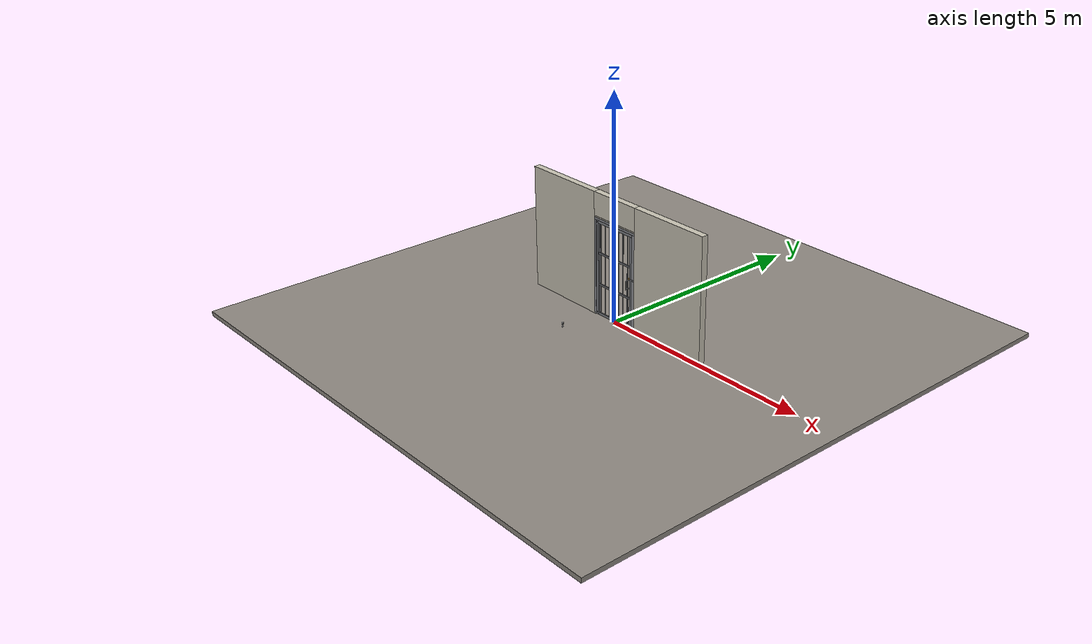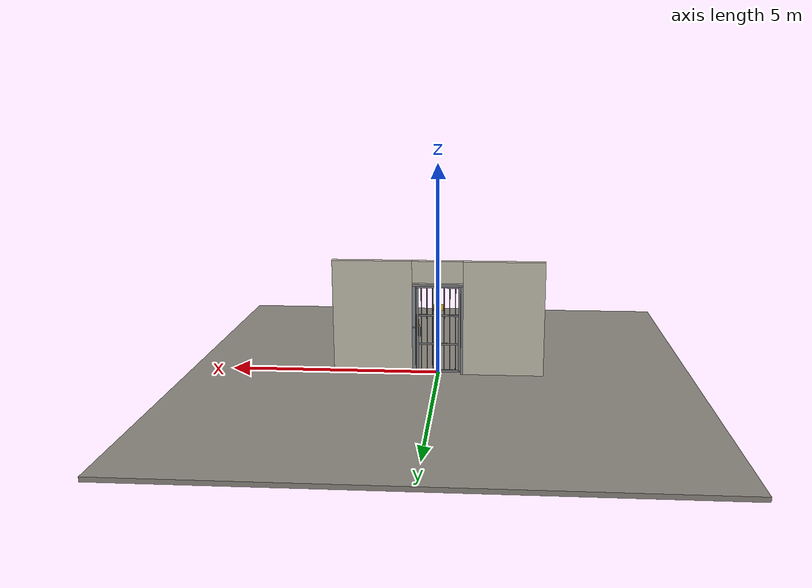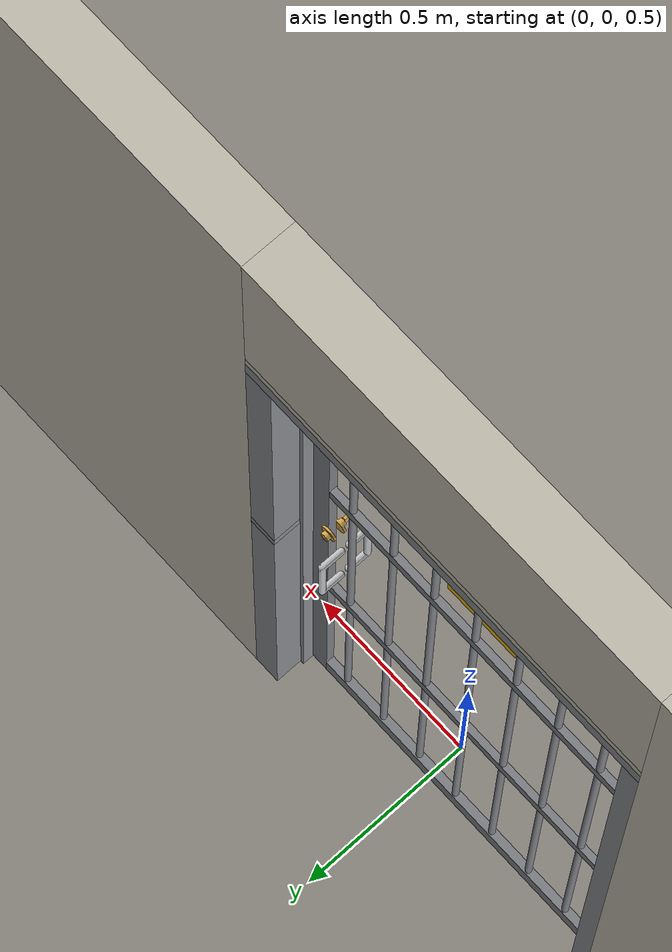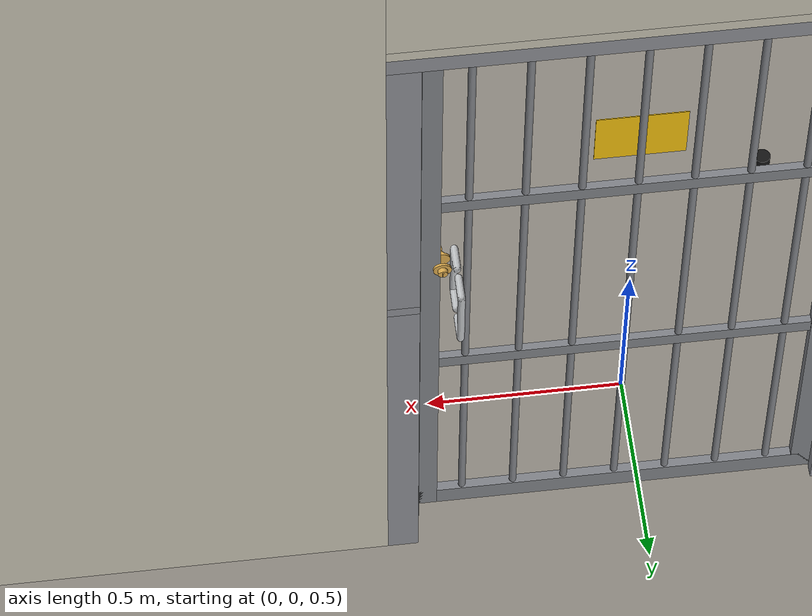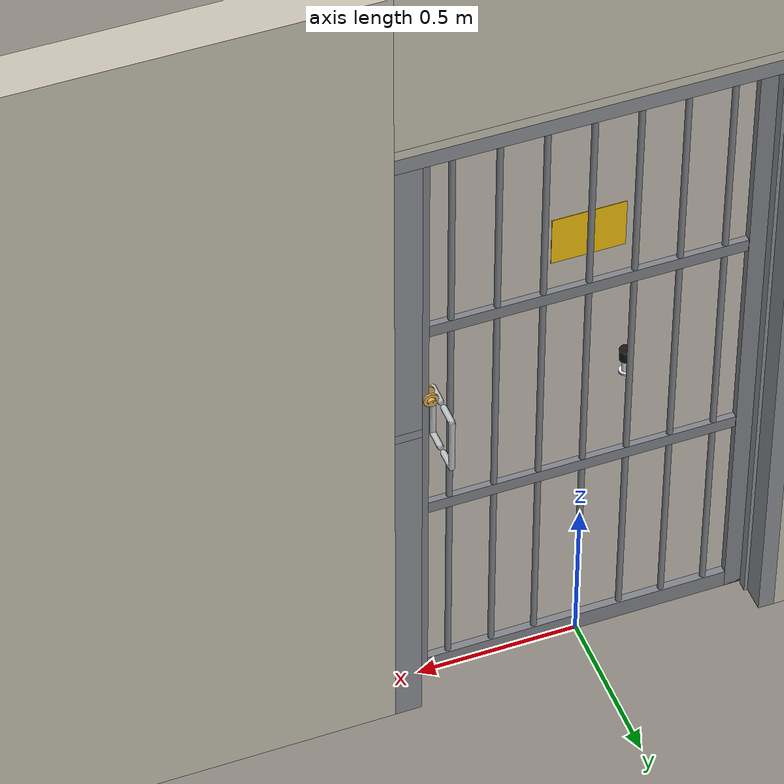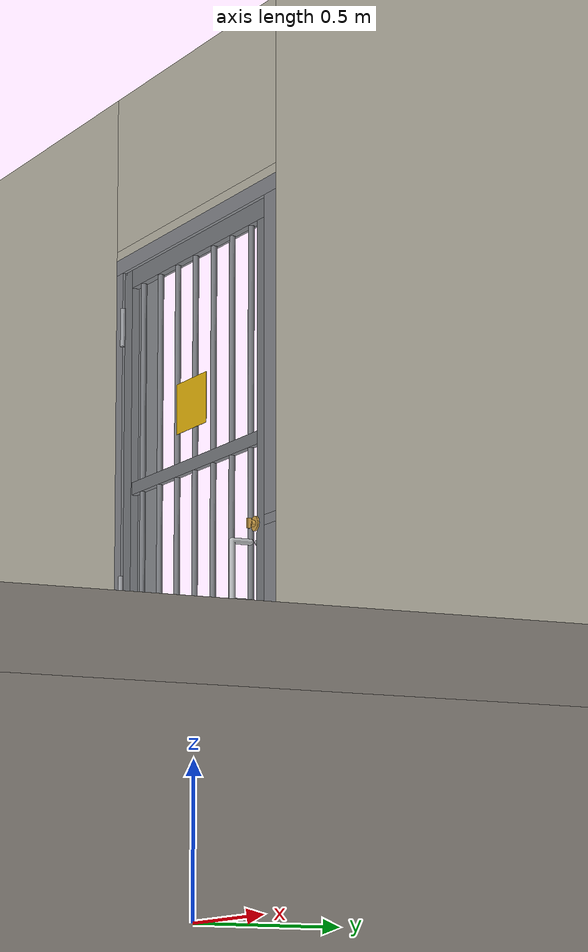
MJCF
<?xml version="1.0" ?>
<mujoco model="db0035_swing_single_full">
  <compiler angle="radian" meshdir="../../hardware" texturedir="../../textures" autolimits="true" inertiafromgeom="false"/>
  <option timestep="0.002" integrator="implicitfast" cone="elliptic" impratio="10" noslip_iterations="3">
    <flag multiccd="enable"/>
  </option>
  <size memory="16M"/>
  <default>
    <geom condim="4" solref="0.005 1" solimp="0.95 0.99 0.001"/>
    <joint solreflimit="0.005 1" solimplimit="0.95 0.99 0.001"/>
    <tendon solreflimit="0.005 1"/>
    <equality solref="0.002 1"/>
  </default>
  <visual>
    <headlight ambient="0.4 0.4 0.4" diffuse="0.7 0.7 0.7" specular="0.2 0.2 0.2"/>
    <quality shadowsize="4096"/>
    <map znear="0.01" zfar="60"/>
  </visual>
  <asset>
    <mesh name="cyl_face_e9e5036966" file="cyl_face_e9e5036966.obj"/>
    <mesh name="hinge_a862eb1c73" file="hinge_a862eb1c73.obj"/>
    <mesh name="hinge_jamb_6edc213065" file="hinge_jamb_6edc213065.obj"/>
    <mesh name="pull_1e5d69a91a" file="pull_1e5d69a91a.obj"/>
    <mesh name="thumbturn_eb5c9899a3" file="thumbturn_eb5c9899a3.obj"/>
    <material name="mat_floor" rgba="0.55 0.53 0.5 1" specular="0.2" shininess="0.15" reflectance="0"/>
    <material name="mat_wall" rgba="0.78 0.76 0.7 1" specular="0.2" shininess="0.1" reflectance="0"/>
    <material name="mat_leaf" rgba="0.5 0.51 0.53 1" specular="0.23" shininess="0.32" reflectance="0.02"/>
    <material name="mat_hinge" rgba="0.65 0.66 0.68 1" specular="0.74" shininess="0.5" reflectance="0.36"/>
    <material name="mat_op_stainless" rgba="0.75 0.76 0.77 1" specular="0.8" shininess="0.65" reflectance="0.4"/>
    <material name="mat_deadbolt" rgba="0.85 0.66 0.3 1" specular="0.8" shininess="0.75" reflectance="0.4"/>
    <material name="mat_frame" rgba="0.55 0.56 0.58 1" specular="0.8" shininess="0.55" reflectance="0.4"/>
    <material name="mat_placard" rgba="0.95 0.75 0.05 1" specular="0.2" shininess="0.5" reflectance="0"/>
    <material name="mat_bumper_stop" rgba="0.08 0.08 0.08 1" specular="0.2" shininess="0.1" reflectance="0"/>
    <material name="mat_stop_base" rgba="0.9 0.9 0.92 1" specular="0.8" shininess="0.9" reflectance="0.4"/>
    <texture name="skybox" type="skybox" builtin="gradient" rgb1="0.6 0.7 0.85" rgb2="0.9 0.92 0.95" width="256" height="256"/>
  </asset>
  <worldbody>
    <light name="sun" pos="1.5 -2.5 4" dir="-0.3 0.5 -0.8" directional="true" diffuse="0.8 0.8 0.8" specular="0.3 0.3 0.3" castshadow="true"/>
    <light name="fill" pos="-1.5 2.5 3" dir="0.3 -0.5 -0.7" directional="true" diffuse="0.35 0.35 0.4" castshadow="false"/>
    <camera name="robot_view" pos="0 -2.584812 1.812087" xyaxes="1 0 0 0 0.26963 0.962964" fovy="52"/>
    <camera name="far_view" pos="0 2.690812 1.812087" xyaxes="-1 0 0 0 -0.26963 0.962964" fovy="52"/>
    <camera name="iso" pos="2.004737 -2.162762 2.234138" xyaxes="0.741536 0.670913 0 -0.242917 0.268487 0.932151" fovy="46"/>
    <camera name="detail_handle" pos="0.6085 -0.8725 1.296" xyaxes="0.97561 0.219512 0 -0.070934 0.315262 0.94635" fovy="38"/>
    <geom name="floor" type="box" size="6 6 0.05" pos="0 0 -0.05" material="mat_floor" group="0" contype="1" conaffinity="1" friction="0.8 0.005 0.0001" density="2400"/>
    <geom name="wall_left" type="box" size="0.95675 0.0725 1.3735" pos="-1.54325 0.053 1.3735" material="mat_wall" group="0" contype="1" conaffinity="1" friction="0.6 0.005 0.0001" density="800"/>
    <geom name="wall_right" type="box" size="0.94175 0.0725 1.3735" pos="1.55825 0.053 1.3735" material="mat_wall" group="0" contype="1" conaffinity="1" friction="0.6 0.005 0.0001" density="800"/>
    <geom name="wall_header" type="box" size="0.6015 0.0725 0.26" pos="0.015 0.053 2.487" material="mat_wall" group="0" contype="1" conaffinity="1" friction="0.6 0.005 0.0001" density="800"/>
    <geom name="hinge_0_jamb" type="mesh" mesh="hinge_jamb_6edc213065" pos="-0.5335 -0.0195 0.259" material="mat_hinge" group="1" contype="0" conaffinity="0" density="7850"/>
    <geom name="hinge_1_jamb" type="mesh" mesh="hinge_jamb_6edc213065" pos="-0.5335 -0.0195 1.076" material="mat_hinge" group="1" contype="0" conaffinity="0" density="7850"/>
    <geom name="hinge_2_jamb" type="mesh" mesh="hinge_jamb_6edc213065" pos="-0.5335 -0.0195 1.963" material="mat_hinge" group="1" contype="0" conaffinity="0" density="7850"/>
    <geom name="leaf_deadbolt_strike_b" type="box" size="0.0155 0.003 0.0005" pos="0.536 0 1.1375" quat="-0.5 -0.5 0.5 0.5" material="mat_deadbolt" group="1" contype="0" conaffinity="0" density="7800"/>
    <geom name="leaf_deadbolt_strike_l" type="box" size="0.003 0.0155 0.0005" pos="0.536 0.0125 1.156" quat="-0.5 -0.5 0.5 0.5" material="mat_deadbolt" group="1" contype="0" conaffinity="0" density="7800"/>
    <geom name="leaf_deadbolt_strike_t" type="box" size="0.0155 0.003 0.0005" pos="0.536 0 1.1745" quat="-0.5 -0.5 0.5 0.5" material="mat_deadbolt" group="1" contype="0" conaffinity="0" density="7800"/>
    <geom name="leaf_deadbolt_strike_r" type="box" size="0.003 0.0155 0.0005" pos="0.536 -0.0125 1.156" quat="-0.5 -0.5 0.5 0.5" material="mat_deadbolt" group="1" contype="0" conaffinity="0" density="7800"/>
    <geom name="jamb_hinge" type="box" size="0.025 0.0725 1.0735" pos="-0.5615 0.053 1.0735" material="mat_frame" group="0" contype="1" conaffinity="1" friction="0.6 0.005 0.0001" density="300"/>
    <geom name="strike_1156_wall_n" type="box" size="0.04 0.058 0.0155" pos="0.5765 0.0675 1.156" material="mat_frame" group="0" contype="1" conaffinity="1" friction="0.6 0.005 0.0001" density="300"/>
    <geom name="strike_1156_wall_p" type="box" size="0.04 0.005 0.0155" pos="0.5765 -0.0145 1.156" material="mat_frame" group="0" contype="1" conaffinity="1" friction="0.6 0.005 0.0001" density="300"/>
    <geom name="strike_1156_back" type="box" size="0.0253 0.0095 0.0155" pos="0.5912 0 1.156" material="mat_frame" group="0" contype="1" conaffinity="1" friction="0.6 0.005 0.0001" density="300"/>
    <geom name="jamb_strike_0" type="box" size="0.04 0.0725 0.57025" pos="0.5765 0.053 0.57025" material="mat_frame" group="0" contype="1" conaffinity="1" friction="0.6 0.005 0.0001" density="300"/>
    <geom name="jamb_strike_1" type="box" size="0.04 0.0725 0.48775" pos="0.5765 0.053 1.65925" material="mat_frame" group="0" contype="1" conaffinity="1" friction="0.6 0.005 0.0001" density="300"/>
    <geom name="jamb_head" type="box" size="0.6015 0.0725 0.025" pos="0.015 0.053 2.172" material="mat_frame" group="0" contype="1" conaffinity="1" friction="0.6 0.005 0.0001" density="300"/>
    <geom name="head_stud" type="box" size="0.6015 0.0725 0.015" pos="0.015 0.053 2.212" material="mat_wall" group="0" contype="1" conaffinity="1" friction="0.6 0.005 0.0001" density="500"/>
    <geom name="stop_hinge" type="box" size="0.0055 0.016 1.0735" pos="-0.531 0.029 1.0735" material="mat_frame" group="0" contype="1" conaffinity="1" friction="0.6 0.005 0.0001" density="300"/>
    <geom name="stop_strike" type="box" size="0.0055 0.016 1.0735" pos="0.531 0.029 1.0735" material="mat_frame" group="0" contype="1" conaffinity="1" friction="0.6 0.005 0.0001" density="300"/>
    <geom name="stop_head" type="box" size="0.5365 0.016 0.0055" pos="0 0.029 2.1415" material="mat_frame" group="0" contype="1" conaffinity="1" friction="0.6 0.005 0.0001" density="300"/>
    <geom name="door_stop_base" type="cylinder" size="0.022 0.003" pos="-0.5495 -0.92645 0.003" material="mat_stop_base" group="0" contype="1" conaffinity="1" friction="0.6 0.005 0.0001" density="7850"/>
    <geom name="door_stop_post" type="cylinder" size="0.012 0.0245" pos="-0.5495 -0.92645 0.0305" material="mat_stop_base" group="0" contype="1" conaffinity="1" friction="0.6 0.005 0.0001" density="7850"/>
    <geom name="door_stop_bumper" type="cylinder" size="0.022 0.02" pos="-0.5495 -0.92645 0.075" material="mat_bumper_stop" group="0" contype="1" conaffinity="1" friction="0.6 0.005 0.0001" density="1100"/>
    <site name="approach_point" pos="0 -1.5 0" quat="1 0 0 0" size="0.05" rgba="0.2 0.9 0.2 0.5" group="4"/>
    <site name="goal_point" pos="0 1.5 0" quat="1 0 0 0" size="0.05" rgba="0.2 0.9 0.2 0.5" group="4"/>
    <site name="door_plane_center" pos="0 0 1.0735" quat="1 0 0 0" size="0.02" rgba="0.2 0.9 0.2 0.5" group="4"/>
    <body name="leaf" pos="-0.5365 0 0">
      <inertial pos="0.536652 -0.000114 1.076114" mass="100.362765" quat="-0.499944 0.499546 0.500445 0.500064" diaginertia="9.771622237 37.79859245 47.551554134"/>
      <joint name="leaf_hinge" type="hinge" axis="0 0 -1" pos="0.003 -0.0195 0" limited="true" range="0 1.570796" damping="0.54954" frictionloss="0.493314" armature="0.02"/>
      <geom name="leaf_slab_col" type="box" size="0.5335 0.0125 1.067" pos="0.5365 0 1.076" material="mat_leaf" group="3" contype="1" conaffinity="1" rgba="0.8 0.3 0.3 0.25" friction="0.45 0.005 0.0001" density="1"/>
      <geom name="leaf_rail_b" type="box" size="0.5335 0.0125 0.03" pos="0.5365 0 0.039" material="mat_leaf" group="1" contype="0" conaffinity="0" density="1"/>
      <geom name="leaf_rail_t" type="box" size="0.5335 0.0125 0.03" pos="0.5365 0 2.113" material="mat_leaf" group="1" contype="0" conaffinity="0" density="1"/>
      <geom name="leaf_stile_h" type="box" size="0.03 0.0125 1.067" pos="0.033 0 1.076" material="mat_leaf" group="1" contype="0" conaffinity="0" density="1"/>
      <geom name="leaf_stile_l" type="box" size="0.03 0.0125 1.067" pos="1.04 0 1.076" material="mat_leaf" group="1" contype="0" conaffinity="0" density="1"/>
      <geom name="leaf_bar_0" type="cylinder" size="0.0095 1.007" pos="0.130643 0 1.076" material="mat_leaf" group="1" contype="0" conaffinity="0" density="1"/>
      <geom name="leaf_bar_1" type="cylinder" size="0.0095 1.007" pos="0.265929 0 1.076" material="mat_leaf" group="1" contype="0" conaffinity="0" density="1"/>
      <geom name="leaf_bar_2" type="cylinder" size="0.0095 1.007" pos="0.401214 0 1.076" material="mat_leaf" group="1" contype="0" conaffinity="0" density="1"/>
      <geom name="leaf_bar_3" type="cylinder" size="0.0095 1.007" pos="0.5365 0 1.076" material="mat_leaf" group="1" contype="0" conaffinity="0" density="1"/>
      <geom name="leaf_bar_4" type="cylinder" size="0.0095 1.007" pos="0.671786 0 1.076" material="mat_leaf" group="1" contype="0" conaffinity="0" density="1"/>
      <geom name="leaf_bar_5" type="cylinder" size="0.0095 1.007" pos="0.807071 0 1.076" material="mat_leaf" group="1" contype="0" conaffinity="0" density="1"/>
      <geom name="leaf_bar_6" type="cylinder" size="0.0095 1.007" pos="0.942357 0 1.076" material="mat_leaf" group="1" contype="0" conaffinity="0" density="1"/>
      <geom name="leaf_crossbar_33" type="box" size="0.4735 0.01 0.02" pos="0.5365 0 0.71322" material="mat_leaf" group="1" contype="0" conaffinity="0" density="1"/>
      <geom name="leaf_crossbar_66" type="box" size="0.4735 0.01 0.02" pos="0.5365 0 1.41744" material="mat_leaf" group="1" contype="0" conaffinity="0" density="1"/>
      <geom name="hinge_0" type="mesh" mesh="hinge_a862eb1c73" pos="0.003 -0.0195 0.259" material="mat_hinge" group="1" contype="0" conaffinity="0" density="7850"/>
      <geom name="hinge_1" type="mesh" mesh="hinge_a862eb1c73" pos="0.003 -0.0195 1.076" material="mat_hinge" group="1" contype="0" conaffinity="0" density="7850"/>
      <geom name="hinge_2" type="mesh" mesh="hinge_a862eb1c73" pos="0.003 -0.0195 1.963" material="mat_hinge" group="1" contype="0" conaffinity="0" density="7850"/>
      <geom name="leaf_pull_n" type="mesh" mesh="pull_1e5d69a91a" pos="0.965 -0.0125 1.016" quat="0.707107 0.707107 0 0" material="mat_op_stainless" group="1" contype="0" conaffinity="0" density="3000"/>
      <geom name="leaf_pull_col_n" type="capsule" size="0.0095 0.08" pos="0.965 -0.0725 1.016" material="mat_op_stainless" group="3" contype="1" conaffinity="1" rgba="0.8 0.3 0.3 0.25" friction="0.7 0.01 0.0001" density="3000"/>
      <geom name="leaf_pull_p" type="mesh" mesh="pull_1e5d69a91a" pos="0.965 0.0125 1.016" quat="-0.707107 0.707107 0 0" material="mat_op_stainless" group="1" contype="0" conaffinity="0" density="3000"/>
      <geom name="leaf_pull_col_p" type="capsule" size="0.0095 0.08" pos="0.965 0.0725 1.016" material="mat_op_stainless" group="3" contype="1" conaffinity="1" rgba="0.8 0.3 0.3 0.25" friction="0.7 0.01 0.0001" density="3000"/>
      <geom name="leaf_deadbolt_faceplate" type="box" size="0.0006 0.0105 0.0245" pos="1.0694 0 1.156" material="mat_deadbolt" group="1" contype="0" conaffinity="0" density="8500"/>
      <geom name="leaf_deadbolt_cylinder_face" type="mesh" mesh="cyl_face_e9e5036966" pos="1.005 0.0125 1.156" quat="-0.707107 0.707107 0 0" material="mat_deadbolt" group="1" contype="0" conaffinity="0" density="7100"/>
      <geom name="warning_placard" type="box" size="0.11 0.001 0.08" pos="0.5365 -0.0135 1.6095" material="mat_placard" group="2" contype="0" conaffinity="0" density="1000"/>
      <site name="leaf_pull_grip_n" pos="0.965 -0.0725 1.016" quat="1 0 0 0" size="0.012" rgba="0.2 0.9 0.2 0.5" group="4"/>
      <site name="leaf_pull_grip_p" pos="0.965 0.0725 1.016" quat="1 0 0 0" size="0.012" rgba="0.2 0.9 0.2 0.5" group="4"/>
      <site name="leaf_edge_mid" pos="1.07 0 1.067" quat="1 0 0 0" size="0.02" rgba="0.2 0.9 0.2 0.5" group="4"/>
      <body name="leaf_deadbolt" pos="1.07 0 1.156">
        <inertial pos="-0.0023 0 0" mass="0.18836" quat="0 0 0.707107 0.707107" diaginertia="0.000013829 0.000052194 0.000057986"/>
        <joint name="leaf_deadbolt_slide" type="slide" axis="-1 0 0" limited="true" range="0 0.0254" damping="5" frictionloss="1.5" armature="0.1"/>
        <geom name="leaf_deadbolt_box" type="box" size="0.0277 0.008 0.0125" pos="-0.0023 0 0" material="mat_deadbolt" group="0" contype="1" conaffinity="1" friction="0.3 0.005 0.0001" density="8500"/>
      </body>
      <body name="leaf_deadbolt_thumbturn" pos="1.005 -0.0125 1.156">
        <inertial pos="0 -0.012928 0" mass="0.178946" quat="0.5 0.5 0.5 0.5" diaginertia="0.000026045 0.000026215 0.000032438"/>
        <joint name="leaf_deadbolt_thumbturn_hinge" type="hinge" axis="0 1 0" limited="true" range="0 1.5708" damping="0.05" frictionloss="0.35" armature="0.005"/>
        <geom name="leaf_deadbolt_thumbturn_mesh" type="mesh" mesh="thumbturn_eb5c9899a3" pos="0 0 0" quat="0.707107 0.707107 0 0" material="mat_deadbolt" group="0" contype="1" conaffinity="1" friction="0.6 0.005 0.0001" density="7100"/>
        <geom name="leaf_deadbolt_thumbturn_col" type="box" size="0.006 0.012 0.016" pos="0 -0.02 0" material="mat_deadbolt" group="3" contype="1" conaffinity="1" rgba="0.8 0.3 0.3 0.25" friction="0.6 0.005 0.0001" density="7100"/>
      </body>
    </body>
  </worldbody>
  <equality>
    <joint name="leaf_deadbolt_couple" joint1="leaf_deadbolt_slide" joint2="leaf_deadbolt_thumbturn_hinge" polycoef="0 0.01617 0 0 0" active="true"/>
  </equality>
  <contact>
    <exclude body1="leaf_deadbolt" body2="leaf_deadbolt_thumbturn"/>
  </contact>
  <sensor>
    <jointpos name="leaf_hinge_pos" joint="leaf_hinge"/>
    <jointvel name="leaf_hinge_vel" joint="leaf_hinge"/>
    <jointpos name="leaf_deadbolt_slide_pos" joint="leaf_deadbolt_slide"/>
    <jointvel name="leaf_deadbolt_slide_vel" joint="leaf_deadbolt_slide"/>
    <jointpos name="leaf_deadbolt_thumbturn_hinge_pos" joint="leaf_deadbolt_thumbturn_hinge"/>
    <jointvel name="leaf_deadbolt_thumbturn_hinge_vel" joint="leaf_deadbolt_thumbturn_hinge"/>
  </sensor>
</mujoco>
